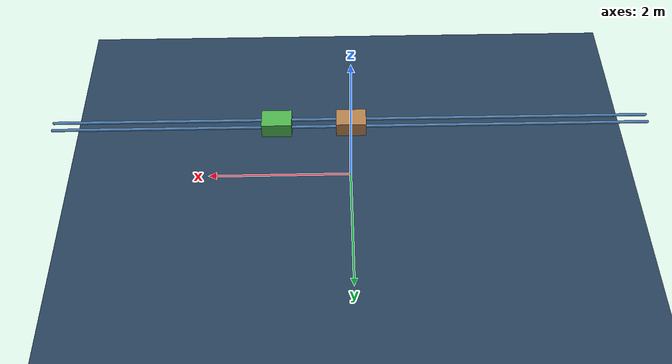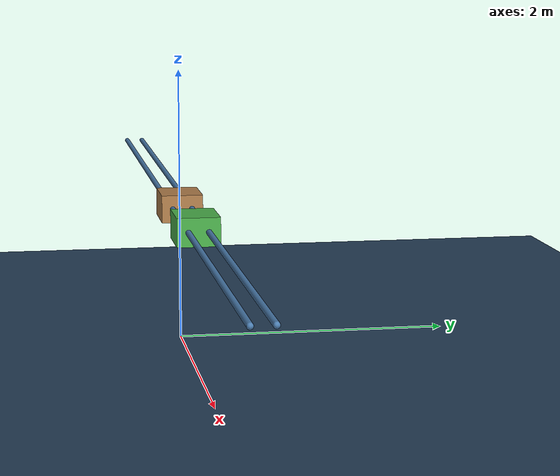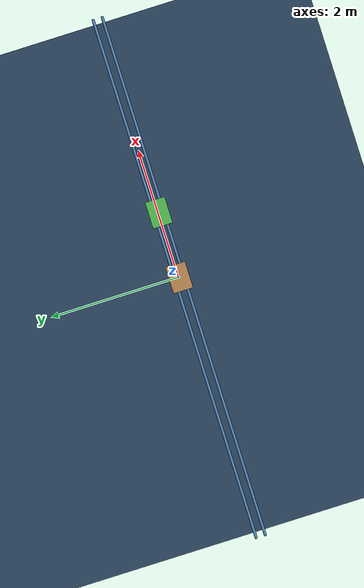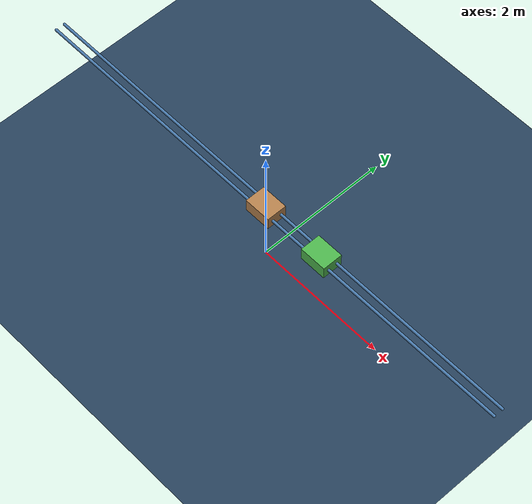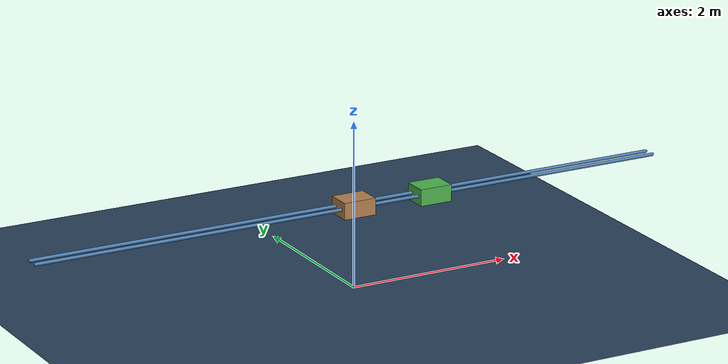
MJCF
<mujoco model="cart">

    <option timestep="0.01" impratio="10" iterations="1" ls_iterations="4">
        <flag contact="disable" gravity="enable" eulerdamp="disable"/>
    </option>

    <visual>
        <headlight ambient=".4 .4 .4" diffuse=".8 .8 .8" specular="0.1 0.1 0.1"/>
        <map znear=".01"/>
        <quality shadowsize="2048"/>
    </visual>

    <asset>
        <texture name="skybox" type="skybox" builtin="gradient" rgb1=".4 .6 .8" rgb2="0 0 0"
                 width="800" height="800" mark="random" markrgb="1 1 1"/>
    </asset>

    <asset>
        <texture name="grid" type="2d" builtin="checker" rgb1=".1 .2 .3" rgb2=".2 .3 .4" width="300" height="300" mark="edge" markrgb=".2 .3 .4"/>
        <material name="grid" texture="grid" texrepeat="1 1" texuniform="true" reflectance=".2"/>
        <material name="self" rgba=".7 .5 .3 1"/>
        <material name="cart2_material" rgba=".3 .7 .3 1"/> <!-- Different color for second cart -->
        <material name="decoration" rgba=".3 .5 .7 1"/>
    </asset>

    <worldbody>
        <light name="light" pos="0 0 6"/>
        <camera name="fixed" pos="0 -4 1" zaxis="0 -1 0"/>
        <camera name="lookatcart" mode="targetbody" target="cart" pos="0 -2 2"/>
        <geom name="floor" pos="0 0 -.05" size="4 4 .2" type="plane" material="grid"/>

        <!-- Rails for visual guidance -->
        <geom name="rail1" type="capsule" pos="0  .07 1" zaxis="1 0 0" size="0.02 4" material="decoration"/>
        <geom name="rail2" type="capsule" pos="0 -.07 1" zaxis="1 0 0" size="0.02 4" material="decoration"/>

        <!-- First Cart -->
        <body name="cart" pos="0 0 1">
            <joint name="slider1" type="slide" limited="false" axis="1 0 0" range="-1.8 1.8" solreflimit=".08 1" damping="5e-4"/>
            <geom name="cart_geom1" type="box" size="0.2 0.15 0.1" material="self" mass="1" contype="1" conaffinity="1"/>
        </body>

        <!-- Second Cart -->
        <body name="cart2" pos="1 0 1"> <!-- Positioned slightly apart -->
            <joint name="slider2" type="slide" limited="false" axis="1 0 0" range="-1.8 1.8" solreflimit=".08 1" damping="5e-4"/>
            <geom name="cart_geom2" type="box" size="0.2 0.15 0.1" material="cart2_material" mass="1" contype="1" conaffinity="1"/>
        </body>

    </worldbody>

    <actuator>
        <motor name="slide1" joint="slider1" gear="10" ctrllimited="false" ctrlrange="-1 1"/>
        <motor name="slide2" joint="slider2" gear="10" ctrllimited="false" ctrlrange="-1 1"/>
    </actuator>

</mujoco>
